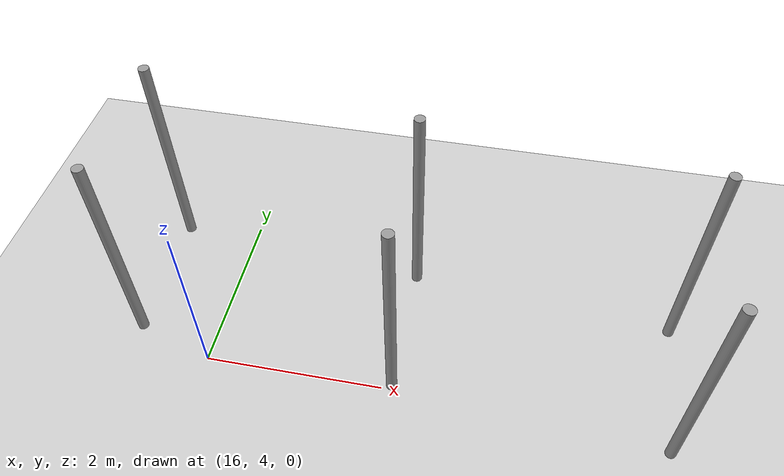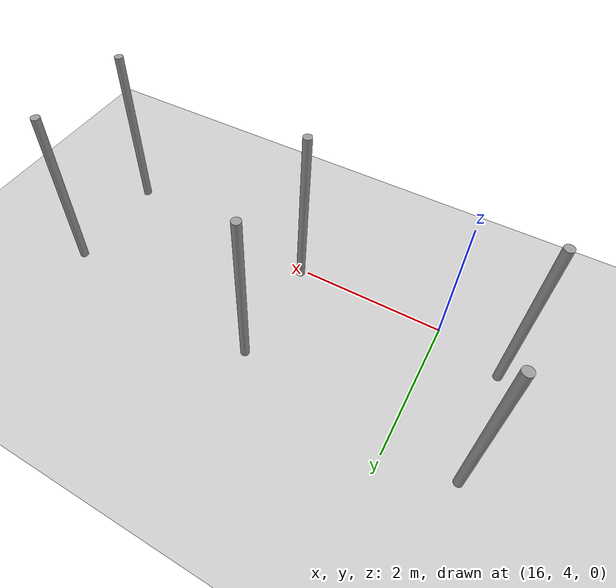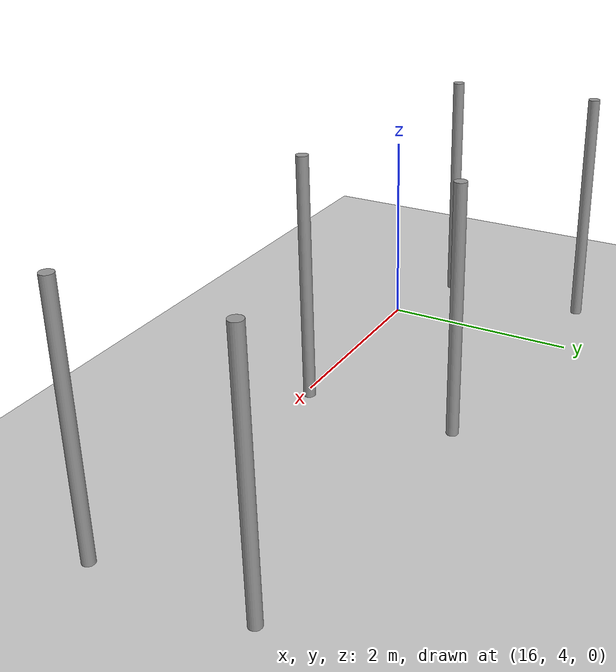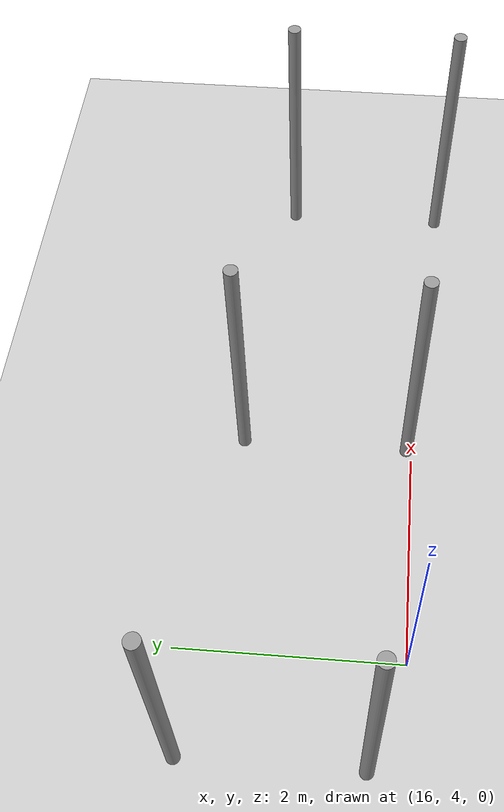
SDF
<sdf version="1.6">
 <world name="default">
  <model name="ground_plane">
   <static>1</static>
   <link name="link">
    <collision name="collision">
     <geometry><plane><normal>0 0 1</normal><size>100 100</size></plane></geometry>
     <surface><friction><ode><mu>100</mu><mu2>50</mu2></ode></friction></surface>
    </collision>
    <visual name="visual">
     <cast_shadows>0</cast_shadows>
     <geometry><plane><normal>0 0 1</normal><size>100 100</size></plane></geometry>
     <material>
      <script><uri>file://media/materials/scripts/gazebo.material</uri><name>Gazebo/Grey</name></script>
     </material>
    </visual>
   </link>
  </model>
  <model name="pole_17">
   <link name="link_0">
    <inertial>
     <mass>0.0364582</mass>
     <inertia>
      <ixx>0.00312124</ixx>
      <ixy>0</ixy>
      <ixz>0</ixz>
      <iyy>0.00312124</iyy>
      <iyz>0</iyz>
      <izz>0.00016615</izz>
     </inertia>
    </inertial>
    <visual name="visual">
     <geometry><cylinder><radius>0.06</radius><length>2.5</length></cylinder></geometry>
     <material>
      <lighting>1</lighting>
      <script><uri>file://media/materials/scripts/gazebo.material</uri><name>Gazebo/Grey</name></script>
      <ambient>0.3 0.3 0.3 1</ambient>
      <diffuse>0.7 0.7 0.7 1</diffuse>
      <specular>0.01 0.01 0.01 1</specular>
      <emissive>0 0 0 1</emissive>
      <shader type="vertex"><normal_map>__default__</normal_map></shader>
     </material>
    </visual>
    <collision name="collision">
     <geometry><cylinder><radius>0.06</radius><length>2.5</length></cylinder></geometry>
     <surface>
      <friction>
       <ode><mu>1</mu><mu2>1</mu2><fdir1>0 0 0</fdir1><slip1>0</slip1><slip2>0</slip2></ode>
       <torsional>
        <coefficient>1</coefficient>
        <patch_radius>0</patch_radius>
        <surface_radius>0</surface_radius>
        <use_patch_radius>1</use_patch_radius>
        <ode><slip>0</slip></ode>
       </torsional>
      </friction>
      <bounce><restitution_coefficient>0</restitution_coefficient><threshold>1e+06</threshold></bounce>
      <contact>
       <collide_without_contact>0</collide_without_contact>
       <collide_without_contact_bitmask>1</collide_without_contact_bitmask>
       <collide_bitmask>1</collide_bitmask>
       <ode>
        <soft_cfm>0</soft_cfm>
        <soft_erp>0.2</soft_erp>
        <kp>1e+13</kp>
        <kd>1</kd>
        <max_vel>0.01</max_vel>
        <min_depth>0</min_depth>
       </ode>
       <bullet>
        <split_impulse>1</split_impulse>
        <split_impulse_penetration_threshold>-0.01</split_impulse_penetration_threshold>
        <soft_cfm>0</soft_cfm>
        <soft_erp>0.2</soft_erp>
        <kp>1e+13</kp>
        <kd>1</kd>
       </bullet>
      </contact>
     </surface>
    </collision>
   </link>
   <static>0</static>
   <pose>15.1067 4.30017 1.25 0 -2e-06 -0.043929</pose>
  </model>
  <model name="pole_18">
   <link name="link_0">
    <inertial>
     <mass>0.0364582</mass>
     <inertia>
      <ixx>0.00312124</ixx>
      <ixy>0</ixy>
      <ixz>0</ixz>
      <iyy>0.00312124</iyy>
      <iyz>0</iyz>
      <izz>0.00016615</izz>
     </inertia>
    </inertial>
    <visual name="visual">
     <geometry><cylinder><radius>0.06</radius><length>2.5</length></cylinder></geometry>
     <material>
      <lighting>1</lighting>
      <script><uri>file://media/materials/scripts/gazebo.material</uri><name>Gazebo/Grey</name></script>
      <ambient>0.3 0.3 0.3 1</ambient>
      <diffuse>0.7 0.7 0.7 1</diffuse>
      <specular>0.01 0.01 0.01 1</specular>
      <emissive>0 0 0 1</emissive>
      <shader type="vertex"><normal_map>__default__</normal_map></shader>
     </material>
    </visual>
    <collision name="collision">
     <geometry><cylinder><radius>0.06</radius><length>2.5</length></cylinder></geometry>
     <surface>
      <friction>
       <ode><mu>1</mu><mu2>1</mu2><fdir1>0 0 0</fdir1><slip1>0</slip1><slip2>0</slip2></ode>
       <torsional>
        <coefficient>1</coefficient>
        <patch_radius>0</patch_radius>
        <surface_radius>0</surface_radius>
        <use_patch_radius>1</use_patch_radius>
        <ode><slip>0</slip></ode>
       </torsional>
      </friction>
      <bounce><restitution_coefficient>0</restitution_coefficient><threshold>1e+06</threshold></bounce>
      <contact>
       <collide_without_contact>0</collide_without_contact>
       <collide_without_contact_bitmask>1</collide_without_contact_bitmask>
       <collide_bitmask>1</collide_bitmask>
       <ode>
        <soft_cfm>0</soft_cfm>
        <soft_erp>0.2</soft_erp>
        <kp>1e+13</kp>
        <kd>1</kd>
        <max_vel>0.01</max_vel>
        <min_depth>0</min_depth>
       </ode>
       <bullet>
        <split_impulse>1</split_impulse>
        <split_impulse_penetration_threshold>-0.01</split_impulse_penetration_threshold>
        <soft_cfm>0</soft_cfm>
        <soft_erp>0.2</soft_erp>
        <kp>1e+13</kp>
        <kd>1</kd>
       </bullet>
      </contact>
     </surface>
    </collision>
   </link>
   <static>0</static>
   <pose>18.1067 4.05015 1.25 0 -1e-06 -0.04555</pose>
  </model>
  <model name="pole_19">
   <link name="link_0">
    <inertial>
     <mass>0.0364582</mass>
     <inertia>
      <ixx>0.00312124</ixx>
      <ixy>0</ixy>
      <ixz>0</ixz>
      <iyy>0.00312124</iyy>
      <iyz>0</iyz>
      <izz>0.00016615</izz>
     </inertia>
    </inertial>
    <visual name="visual">
     <geometry><cylinder><radius>0.06</radius><length>2.5</length></cylinder></geometry>
     <material>
      <lighting>1</lighting>
      <script><uri>file://media/materials/scripts/gazebo.material</uri><name>Gazebo/Grey</name></script>
      <ambient>0.3 0.3 0.3 1</ambient>
      <diffuse>0.7 0.7 0.7 1</diffuse>
      <specular>0.01 0.01 0.01 1</specular>
      <emissive>0 0 0 1</emissive>
      <shader type="vertex"><normal_map>__default__</normal_map></shader>
     </material>
    </visual>
    <collision name="collision">
     <geometry><cylinder><radius>0.06</radius><length>2.5</length></cylinder></geometry>
     <surface>
      <friction>
       <ode><mu>1</mu><mu2>1</mu2><fdir1>0 0 0</fdir1><slip1>0</slip1><slip2>0</slip2></ode>
       <torsional>
        <coefficient>1</coefficient>
        <patch_radius>0</patch_radius>
        <surface_radius>0</surface_radius>
        <use_patch_radius>1</use_patch_radius>
        <ode><slip>0</slip></ode>
       </torsional>
      </friction>
      <bounce><restitution_coefficient>0</restitution_coefficient><threshold>1e+06</threshold></bounce>
      <contact>
       <collide_without_contact>0</collide_without_contact>
       <collide_without_contact_bitmask>1</collide_without_contact_bitmask>
       <collide_bitmask>1</collide_bitmask>
       <ode>
        <soft_cfm>0</soft_cfm>
        <soft_erp>0.2</soft_erp>
        <kp>1e+13</kp>
        <kd>1</kd>
        <max_vel>0.01</max_vel>
        <min_depth>0</min_depth>
       </ode>
       <bullet>
        <split_impulse>1</split_impulse>
        <split_impulse_penetration_threshold>-0.01</split_impulse_penetration_threshold>
        <soft_cfm>0</soft_cfm>
        <soft_erp>0.2</soft_erp>
        <kp>1e+13</kp>
        <kd>1</kd>
       </bullet>
      </contact>
     </surface>
    </collision>
   </link>
   <static>0</static>
   <pose>21.1068 3.80011 1.25 -1e-06 1e-06 -0.311503</pose>
  </model>
  <model name="pole_20">
   <link name="link_0">
    <inertial>
     <mass>0.0364582</mass>
     <inertia>
      <ixx>0.00312124</ixx>
      <ixy>0</ixy>
      <ixz>0</ixz>
      <iyy>0.00312124</iyy>
      <iyz>0</iyz>
      <izz>0.00016615</izz>
     </inertia>
    </inertial>
    <visual name="visual">
     <geometry><cylinder><radius>0.06</radius><length>2.5</length></cylinder></geometry>
     <material>
      <lighting>1</lighting>
      <script><uri>file://media/materials/scripts/gazebo.material</uri><name>Gazebo/Grey</name></script>
      <ambient>0.3 0.3 0.3 1</ambient>
      <diffuse>0.7 0.7 0.7 1</diffuse>
      <specular>0.01 0.01 0.01 1</specular>
      <emissive>0 0 0 1</emissive>
      <shader type="vertex"><normal_map>__default__</normal_map></shader>
     </material>
    </visual>
    <collision name="collision">
     <geometry><cylinder><radius>0.06</radius><length>2.5</length></cylinder></geometry>
     <surface>
      <friction>
       <ode><mu>1</mu><mu2>1</mu2><fdir1>0 0 0</fdir1><slip1>0</slip1><slip2>0</slip2></ode>
       <torsional>
        <coefficient>1</coefficient>
        <patch_radius>0</patch_radius>
        <surface_radius>0</surface_radius>
        <use_patch_radius>1</use_patch_radius>
        <ode><slip>0</slip></ode>
       </torsional>
      </friction>
      <bounce><restitution_coefficient>0</restitution_coefficient><threshold>1e+06</threshold></bounce>
      <contact>
       <collide_without_contact>0</collide_without_contact>
       <collide_without_contact_bitmask>1</collide_without_contact_bitmask>
       <collide_bitmask>1</collide_bitmask>
       <ode>
        <soft_cfm>0</soft_cfm>
        <soft_erp>0.2</soft_erp>
        <kp>1e+13</kp>
        <kd>1</kd>
        <max_vel>0.01</max_vel>
        <min_depth>0</min_depth>
       </ode>
       <bullet>
        <split_impulse>1</split_impulse>
        <split_impulse_penetration_threshold>-0.01</split_impulse_penetration_threshold>
        <soft_cfm>0</soft_cfm>
        <soft_erp>0.2</soft_erp>
        <kp>1e+13</kp>
        <kd>1</kd>
       </bullet>
      </contact>
     </surface>
    </collision>
   </link>
   <static>0</static>
   <pose>15.1067 5.85018 1.24999 -1e-06 1e-06 -0.044461</pose>
  </model>
  <model name="pole_21">
   <link name="link_0">
    <inertial>
     <mass>0.0364582</mass>
     <inertia>
      <ixx>0.00312124</ixx>
      <ixy>0</ixy>
      <ixz>0</ixz>
      <iyy>0.00312124</iyy>
      <iyz>0</iyz>
      <izz>0.00016615</izz>
     </inertia>
    </inertial>
    <visual name="visual">
     <geometry><cylinder><radius>0.06</radius><length>2.5</length></cylinder></geometry>
     <material>
      <lighting>1</lighting>
      <script><uri>file://media/materials/scripts/gazebo.material</uri><name>Gazebo/Grey</name></script>
      <ambient>0.3 0.3 0.3 1</ambient>
      <diffuse>0.7 0.7 0.7 1</diffuse>
      <specular>0.01 0.01 0.01 1</specular>
      <emissive>0 0 0 1</emissive>
      <shader type="vertex"><normal_map>__default__</normal_map></shader>
     </material>
    </visual>
    <collision name="collision">
     <geometry><cylinder><radius>0.06</radius><length>2.5</length></cylinder></geometry>
     <surface>
      <friction>
       <ode><mu>1</mu><mu2>1</mu2><fdir1>0 0 0</fdir1><slip1>0</slip1><slip2>0</slip2></ode>
       <torsional>
        <coefficient>1</coefficient>
        <patch_radius>0</patch_radius>
        <surface_radius>0</surface_radius>
        <use_patch_radius>1</use_patch_radius>
        <ode><slip>0</slip></ode>
       </torsional>
      </friction>
      <bounce><restitution_coefficient>0</restitution_coefficient><threshold>1e+06</threshold></bounce>
      <contact>
       <collide_without_contact>0</collide_without_contact>
       <collide_without_contact_bitmask>1</collide_without_contact_bitmask>
       <collide_bitmask>1</collide_bitmask>
       <ode>
        <soft_cfm>0</soft_cfm>
        <soft_erp>0.2</soft_erp>
        <kp>1e+13</kp>
        <kd>1</kd>
        <max_vel>0.01</max_vel>
        <min_depth>0</min_depth>
       </ode>
       <bullet>
        <split_impulse>1</split_impulse>
        <split_impulse_penetration_threshold>-0.01</split_impulse_penetration_threshold>
        <soft_cfm>0</soft_cfm>
        <soft_erp>0.2</soft_erp>
        <kp>1e+13</kp>
        <kd>1</kd>
       </bullet>
      </contact>
     </surface>
    </collision>
   </link>
   <static>0</static>
   <pose>18.1067 5.60017 1.25 -1e-06 1e-06 -0.042803</pose>
  </model>
  <model name="pole_22">
   <link name="link_0">
    <inertial>
     <mass>0.0364582</mass>
     <inertia>
      <ixx>0.00312124</ixx>
      <ixy>0</ixy>
      <ixz>0</ixz>
      <iyy>0.00312124</iyy>
      <iyz>0</iyz>
      <izz>0.00016615</izz>
     </inertia>
    </inertial>
    <visual name="visual">
     <geometry><cylinder><radius>0.06</radius><length>2.5</length></cylinder></geometry>
     <material>
      <lighting>1</lighting>
      <script><uri>file://media/materials/scripts/gazebo.material</uri><name>Gazebo/Grey</name></script>
      <ambient>0.3 0.3 0.3 1</ambient>
      <diffuse>0.7 0.7 0.7 1</diffuse>
      <specular>0.01 0.01 0.01 1</specular>
      <emissive>0 0 0 1</emissive>
      <shader type="vertex"><normal_map>__default__</normal_map></shader>
     </material>
    </visual>
    <collision name="collision">
     <geometry><cylinder><radius>0.06</radius><length>2.5</length></cylinder></geometry>
     <surface>
      <friction>
       <ode><mu>1</mu><mu2>1</mu2><fdir1>0 0 0</fdir1><slip1>0</slip1><slip2>0</slip2></ode>
       <torsional>
        <coefficient>1</coefficient>
        <patch_radius>0</patch_radius>
        <surface_radius>0</surface_radius>
        <use_patch_radius>1</use_patch_radius>
        <ode><slip>0</slip></ode>
       </torsional>
      </friction>
      <bounce><restitution_coefficient>0</restitution_coefficient><threshold>1e+06</threshold></bounce>
      <contact>
       <collide_without_contact>0</collide_without_contact>
       <collide_without_contact_bitmask>1</collide_without_contact_bitmask>
       <collide_bitmask>1</collide_bitmask>
       <ode>
        <soft_cfm>0</soft_cfm>
        <soft_erp>0.2</soft_erp>
        <kp>1e+13</kp>
        <kd>1</kd>
        <max_vel>0.01</max_vel>
        <min_depth>0</min_depth>
       </ode>
       <bullet>
        <split_impulse>1</split_impulse>
        <split_impulse_penetration_threshold>-0.01</split_impulse_penetration_threshold>
        <soft_cfm>0</soft_cfm>
        <soft_erp>0.2</soft_erp>
        <kp>1e+13</kp>
        <kd>1</kd>
       </bullet>
      </contact>
     </surface>
    </collision>
   </link>
   <static>0</static>
   <pose>21.1068 5.35013 1.24999 -1e-06 1e-06 -0.049471</pose>
  </model>
 </world>
</sdf>
